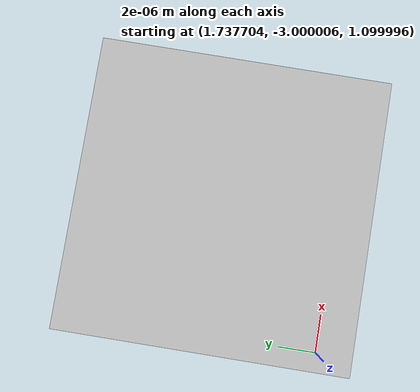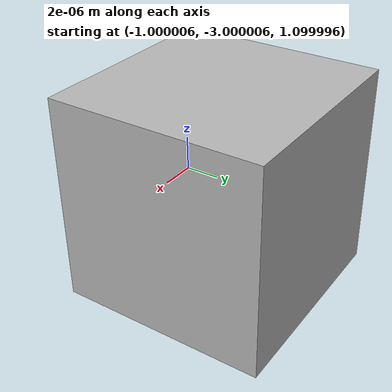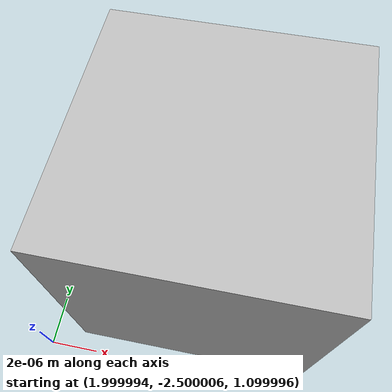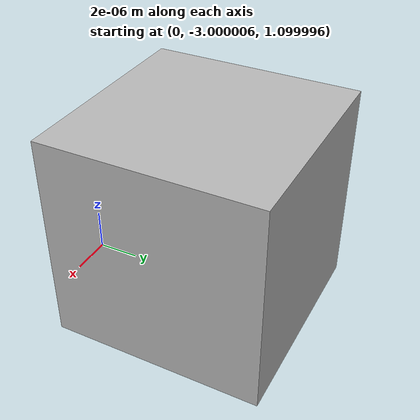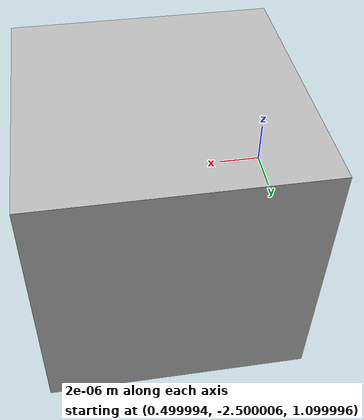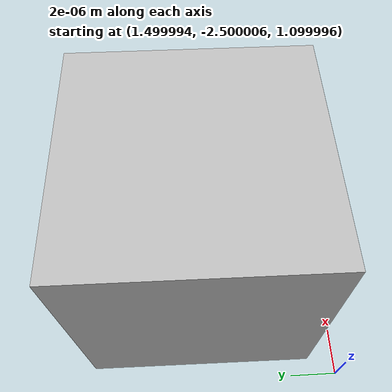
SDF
<sdf version="1.6">
 <world name="default">
  <light name="sun" type="directional">
   <pose>0 0 10 0 -0 0</pose>
   <diffuse>0.8 0.8 0.8 1</diffuse>
   <specular>0.2 0.2 0.2 1</specular>
   <attenuation>
    <range>1000</range>
    <constant>0.9</constant>
    <linear>0.01</linear>
    <quadratic>0.001</quadratic>
   </attenuation>
   <direction>-0.5 0.1 -0.9</direction>
  </light>
  <physics name="default_physics" default="0" type="ode">
   <max_step_size>0.001</max_step_size>
   <real_time_factor>1</real_time_factor>
   <real_time_update_rate>1000</real_time_update_rate>
  </physics>
  <scene><ambient>0.4 0.4 0.4 1</ambient><background>0.7 0.7 0.7 1</background><shadows>1</shadows></scene>
  <spherical_coordinates>
   <surface_model>EARTH_WGS84</surface_model>
   <latitude_deg>0</latitude_deg>
   <longitude_deg>0</longitude_deg>
   <elevation>0</elevation>
   <heading_deg>0</heading_deg>
  </spherical_coordinates>
  <gravity>0 0 -9.8</gravity>
  <magnetic_field>6e-06 2.3e-05 -4.2e-05</magnetic_field>
  <atmosphere type="adiabatic"/>
  <audio><device>default</device></audio>
  <model name="robot_0">
   <link name="my_box">
    <inertial>
     <mass>1</mass>
     <inertia><ixx>0</ixx><ixy>0</ixy><ixz>0</ixz><iyy>0</iyy><iyz>0</iyz><izz>0</izz></inertia>
    </inertial>
    <collision name="my_box_collision"><geometry><box><size>1e-05 1e-05 1e-05</size></box></geometry></collision>
    <visual name="my_box_visual">
     <geometry><box><size>1e-05 1e-05 1e-05</size></box></geometry>
     <material><script><uri>__default__</uri><name>__default__</name></script></material>
    </visual>
    <gravity>0</gravity>
    <sensor name="camera" type="depth">
     <always_on>1</always_on>
     <update_rate>20</update_rate>
     <camera name="__default__">
      <image><format>R8G8B8</format><width>640</width><height>480</height></image>
      <clip><near>0.01</near><far>20</far></clip>
      <horizontal_fov>1.047</horizontal_fov>
     </camera>
     <plugin name="kinect_camera_controller" filename="libgazebo_ros_openni_kinect.so">
      <cameraName>camera0</cameraName>
      <alwaysOn>1</alwaysOn>
      <updateRate>20</updateRate>
      <imageTopicName>rgb/image_raw</imageTopicName>
      <depthImageTopicName>depth/image_raw</depthImageTopicName>
      <pointCloudTopicName>depth/points</pointCloudTopicName>
      <cameraInfoTopicName>rgb/camera_info</cameraInfoTopicName>
      <depthImageCameraInfoTopicName>depth/camera_info</depthImageCameraInfoTopicName>
      <frameName>camera_depth_optical_frame</frameName>
      <baseline>0.0</baseline>
      <distortion_k1>0.0</distortion_k1>
      <distortion_k2>0.0</distortion_k2>
      <distortion_k3>0.0</distortion_k3>
      <distortion_t1>0.0</distortion_t1>
      <distortion_t2>0.0</distortion_t2>
      <CxPrime>0</CxPrime>
      <Cx>0</Cx>
      <Cy>0</Cy>
      <focalLength>0</focalLength>
      <pointCloudCutoff>0.0001</pointCloudCutoff>
      <robotNamespace>/</robotNamespace>
     </plugin>
    </sensor>
   </link>
   <pose>2.26228 -3 1.1 0 1e-06 -1e-06</pose>
  </model>
  <model name="robot_2">
   <link name="my_box">
    <inertial>
     <mass>1</mass>
     <inertia><ixx>0</ixx><ixy>0</ixy><ixz>0</ixz><iyy>0</iyy><iyz>0</iyz><izz>0</izz></inertia>
    </inertial>
    <collision name="my_box_collision"><geometry><box><size>1e-05 1e-05 1e-05</size></box></geometry></collision>
    <visual name="my_box_visual">
     <geometry><box><size>1e-05 1e-05 1e-05</size></box></geometry>
     <material><script><uri>__default__</uri><name>__default__</name></script></material>
    </visual>
    <gravity>0</gravity>
    <sensor name="camera" type="depth">
     <always_on>1</always_on>
     <update_rate>20</update_rate>
     <camera name="__default__">
      <image><format>R8G8B8</format><width>640</width><height>480</height></image>
      <clip><near>0.01</near><far>5</far></clip>
      <horizontal_fov>1.047</horizontal_fov>
     </camera>
     <plugin name="kinect_camera_controller" filename="libgazebo_ros_openni_kinect.so">
      <cameraName>camera2</cameraName>
      <alwaysOn>1</alwaysOn>
      <updateRate>20</updateRate>
      <imageTopicName>rgb/image_raw</imageTopicName>
      <depthImageTopicName>depth/image_raw</depthImageTopicName>
      <pointCloudTopicName>depth/points</pointCloudTopicName>
      <cameraInfoTopicName>rgb/camera_info</cameraInfoTopicName>
      <depthImageCameraInfoTopicName>depth/camera_info</depthImageCameraInfoTopicName>
      <frameName>camera_depth_optical_frame</frameName>
      <baseline>0.0</baseline>
      <distortion_k1>0.0</distortion_k1>
      <distortion_k2>0.0</distortion_k2>
      <distortion_k3>0.0</distortion_k3>
      <distortion_t1>0.0</distortion_t1>
      <distortion_t2>0.0</distortion_t2>
      <CxPrime>0</CxPrime>
      <Cx>0</Cx>
      <Cy>0</Cy>
      <focalLength>0</focalLength>
      <pointCloudCutoff>0.0001</pointCloudCutoff>
      <robotNamespace>/</robotNamespace>
     </plugin>
    </sensor>
   </link>
   <pose>0 -3 1.1 0 -0 0</pose>
  </model>
  <model name="robot_1">
   <link name="my_box">
    <inertial>
     <mass>1</mass>
     <inertia><ixx>0</ixx><ixy>0</ixy><ixz>0</ixz><iyy>0</iyy><iyz>0</iyz><izz>0</izz></inertia>
    </inertial>
    <collision name="my_box_collision"><geometry><box><size>1e-05 1e-05 1e-05</size></box></geometry></collision>
    <visual name="my_box_visual">
     <geometry><box><size>1e-05 1e-05 1e-05</size></box></geometry>
     <material><script><uri>__default__</uri><name>__default__</name></script></material>
    </visual>
    <gravity>0</gravity>
    <sensor name="camera" type="depth">
     <always_on>1</always_on>
     <update_rate>20</update_rate>
     <camera name="__default__">
      <image><format>R8G8B8</format><width>640</width><height>480</height></image>
      <clip><near>0.01</near><far>5</far></clip>
      <horizontal_fov>1.047</horizontal_fov>
     </camera>
     <plugin name="kinect_camera_controller" filename="libgazebo_ros_openni_kinect.so">
      <cameraName>camera1</cameraName>
      <alwaysOn>1</alwaysOn>
      <updateRate>20</updateRate>
      <imageTopicName>rgb/image_raw</imageTopicName>
      <depthImageTopicName>depth/image_raw</depthImageTopicName>
      <pointCloudTopicName>depth/points</pointCloudTopicName>
      <cameraInfoTopicName>rgb/camera_info</cameraInfoTopicName>
      <depthImageCameraInfoTopicName>depth/camera_info</depthImageCameraInfoTopicName>
      <frameName>camera_depth_optical_frame</frameName>
      <baseline>0.0</baseline>
      <distortion_k1>0.0</distortion_k1>
      <distortion_k2>0.0</distortion_k2>
      <distortion_k3>0.0</distortion_k3>
      <distortion_t1>0.0</distortion_t1>
      <distortion_t2>0.0</distortion_t2>
      <CxPrime>0</CxPrime>
      <Cx>0</Cx>
      <Cy>0</Cy>
      <focalLength>0</focalLength>
      <pointCloudCutoff>0.0001</pointCloudCutoff>
      <robotNamespace>/</robotNamespace>
     </plugin>
    </sensor>
   </link>
   <pose>1 -3 1.1 0 -0 0</pose>
  </model>
  <model name="robot_5">
   <link name="my_box">
    <inertial>
     <mass>1</mass>
     <inertia><ixx>0</ixx><ixy>0</ixy><ixz>0</ixz><iyy>0</iyy><iyz>0</iyz><izz>0</izz></inertia>
    </inertial>
    <collision name="my_box_collision"><geometry><box><size>1e-05 1e-05 1e-05</size></box></geometry></collision>
    <visual name="my_box_visual">
     <geometry><box><size>1e-05 1e-05 1e-05</size></box></geometry>
     <material><script><uri>__default__</uri><name>__default__</name></script></material>
    </visual>
    <gravity>0</gravity>
    <sensor name="camera" type="depth">
     <always_on>1</always_on>
     <update_rate>20</update_rate>
     <camera name="__default__">
      <image><format>R8G8B8</format><width>640</width><height>480</height></image>
      <clip><near>0.01</near><far>5</far></clip>
      <horizontal_fov>1.047</horizontal_fov>
     </camera>
     <plugin name="kinect_camera_controller" filename="libgazebo_ros_openni_kinect.so">
      <cameraName>camera5</cameraName>
      <alwaysOn>1</alwaysOn>
      <updateRate>20</updateRate>
      <imageTopicName>rgb/image_raw</imageTopicName>
      <depthImageTopicName>depth/image_raw</depthImageTopicName>
      <pointCloudTopicName>depth/points</pointCloudTopicName>
      <cameraInfoTopicName>rgb/camera_info</cameraInfoTopicName>
      <depthImageCameraInfoTopicName>depth/camera_info</depthImageCameraInfoTopicName>
      <frameName>camera_depth_optical_frame</frameName>
      <baseline>0.0</baseline>
      <distortion_k1>0.0</distortion_k1>
      <distortion_k2>0.0</distortion_k2>
      <distortion_k3>0.0</distortion_k3>
      <distortion_t1>0.0</distortion_t1>
      <distortion_t2>0.0</distortion_t2>
      <CxPrime>0</CxPrime>
      <Cx>0</Cx>
      <Cy>0</Cy>
      <focalLength>0</focalLength>
      <pointCloudCutoff>0.0001</pointCloudCutoff>
      <robotNamespace>/</robotNamespace>
     </plugin>
    </sensor>
   </link>
   <pose>0 -2.5 1.1 0 -0 0</pose>
  </model>
  <model name="robot_3">
   <link name="my_box">
    <inertial>
     <mass>1</mass>
     <inertia><ixx>0</ixx><ixy>0</ixy><ixz>0</ixz><iyy>0</iyy><iyz>0</iyz><izz>0</izz></inertia>
    </inertial>
    <collision name="my_box_collision"><geometry><box><size>1e-05 1e-05 1e-05</size></box></geometry></collision>
    <visual name="my_box_visual">
     <geometry><box><size>1e-05 1e-05 1e-05</size></box></geometry>
     <material><script><uri>__default__</uri><name>__default__</name></script></material>
    </visual>
    <gravity>0</gravity>
    <sensor name="camera" type="depth">
     <always_on>1</always_on>
     <update_rate>20</update_rate>
     <camera name="__default__">
      <image><format>R8G8B8</format><width>640</width><height>480</height></image>
      <clip><near>0.01</near><far>5</far></clip>
      <horizontal_fov>1.047</horizontal_fov>
     </camera>
     <plugin name="kinect_camera_controller" filename="libgazebo_ros_openni_kinect.so">
      <cameraName>camera3</cameraName>
      <alwaysOn>1</alwaysOn>
      <updateRate>20</updateRate>
      <imageTopicName>rgb/image_raw</imageTopicName>
      <depthImageTopicName>depth/image_raw</depthImageTopicName>
      <pointCloudTopicName>depth/points</pointCloudTopicName>
      <cameraInfoTopicName>rgb/camera_info</cameraInfoTopicName>
      <depthImageCameraInfoTopicName>depth/camera_info</depthImageCameraInfoTopicName>
      <frameName>camera_depth_optical_frame</frameName>
      <baseline>0.0</baseline>
      <distortion_k1>0.0</distortion_k1>
      <distortion_k2>0.0</distortion_k2>
      <distortion_k3>0.0</distortion_k3>
      <distortion_t1>0.0</distortion_t1>
      <distortion_t2>0.0</distortion_t2>
      <CxPrime>0</CxPrime>
      <Cx>0</Cx>
      <Cy>0</Cy>
      <focalLength>0</focalLength>
      <pointCloudCutoff>0.0001</pointCloudCutoff>
      <robotNamespace>/</robotNamespace>
     </plugin>
    </sensor>
   </link>
   <pose>-1 -3 1.1 0 -0 0</pose>
  </model>
  <model name="robot_4">
   <link name="my_box">
    <inertial>
     <mass>1</mass>
     <inertia><ixx>0</ixx><ixy>0</ixy><ixz>0</ixz><iyy>0</iyy><iyz>0</iyz><izz>0</izz></inertia>
    </inertial>
    <collision name="my_box_collision"><geometry><box><size>1e-05 1e-05 1e-05</size></box></geometry></collision>
    <visual name="my_box_visual">
     <geometry><box><size>1e-05 1e-05 1e-05</size></box></geometry>
     <material><script><uri>__default__</uri><name>__default__</name></script></material>
    </visual>
    <gravity>0</gravity>
    <sensor name="camera" type="depth">
     <always_on>1</always_on>
     <update_rate>20</update_rate>
     <camera name="__default__">
      <image><format>R8G8B8</format><width>640</width><height>480</height></image>
      <clip><near>0.01</near><far>5</far></clip>
      <horizontal_fov>1.047</horizontal_fov>
     </camera>
     <plugin name="kinect_camera_controller" filename="libgazebo_ros_openni_kinect.so">
      <cameraName>camera4</cameraName>
      <alwaysOn>1</alwaysOn>
      <updateRate>20</updateRate>
      <imageTopicName>rgb/image_raw</imageTopicName>
      <depthImageTopicName>depth/image_raw</depthImageTopicName>
      <pointCloudTopicName>depth/points</pointCloudTopicName>
      <cameraInfoTopicName>rgb/camera_info</cameraInfoTopicName>
      <depthImageCameraInfoTopicName>depth/camera_info</depthImageCameraInfoTopicName>
      <frameName>camera_depth_optical_frame</frameName>
      <baseline>0.0</baseline>
      <distortion_k1>0.0</distortion_k1>
      <distortion_k2>0.0</distortion_k2>
      <distortion_k3>0.0</distortion_k3>
      <distortion_t1>0.0</distortion_t1>
      <distortion_t2>0.0</distortion_t2>
      <CxPrime>0</CxPrime>
      <Cx>0</Cx>
      <Cy>0</Cy>
      <focalLength>0</focalLength>
      <pointCloudCutoff>0.0001</pointCloudCutoff>
      <robotNamespace>/</robotNamespace>
     </plugin>
    </sensor>
   </link>
   <pose>1.73771 -3 1.1 0 -1e-06 1e-06</pose>
  </model>
  <model name="robot_6">
   <link name="my_box">
    <inertial>
     <mass>1</mass>
     <inertia><ixx>0</ixx><ixy>0</ixy><ixz>0</ixz><iyy>0</iyy><iyz>0</iyz><izz>0</izz></inertia>
    </inertial>
    <collision name="my_box_collision"><geometry><box><size>1e-05 1e-05 1e-05</size></box></geometry></collision>
    <visual name="my_box_visual">
     <geometry><box><size>1e-05 1e-05 1e-05</size></box></geometry>
     <material><script><uri>__default__</uri><name>__default__</name></script></material>
    </visual>
    <gravity>0</gravity>
    <sensor name="camera" type="depth">
     <always_on>1</always_on>
     <update_rate>20</update_rate>
     <camera name="__default__">
      <image><format>R8G8B8</format><width>640</width><height>480</height></image>
      <clip><near>0.01</near><far>5</far></clip>
      <horizontal_fov>1.047</horizontal_fov>
     </camera>
     <plugin name="kinect_camera_controller" filename="libgazebo_ros_openni_kinect.so">
      <cameraName>camera6</cameraName>
      <alwaysOn>1</alwaysOn>
      <updateRate>20</updateRate>
      <imageTopicName>rgb/image_raw</imageTopicName>
      <depthImageTopicName>depth/image_raw</depthImageTopicName>
      <pointCloudTopicName>depth/points</pointCloudTopicName>
      <cameraInfoTopicName>rgb/camera_info</cameraInfoTopicName>
      <depthImageCameraInfoTopicName>depth/camera_info</depthImageCameraInfoTopicName>
      <frameName>camera_depth_optical_frame</frameName>
      <baseline>0.0</baseline>
      <distortion_k1>0.0</distortion_k1>
      <distortion_k2>0.0</distortion_k2>
      <distortion_k3>0.0</distortion_k3>
      <distortion_t1>0.0</distortion_t1>
      <distortion_t2>0.0</distortion_t2>
      <CxPrime>0</CxPrime>
      <Cx>0</Cx>
      <Cy>0</Cy>
      <focalLength>0</focalLength>
      <pointCloudCutoff>0.0001</pointCloudCutoff>
      <robotNamespace>/</robotNamespace>
     </plugin>
    </sensor>
   </link>
   <pose>0.5 -2.5 1.1 0 -0 0</pose>
  </model>
  <model name="robot_7">
   <link name="my_box">
    <inertial>
     <mass>1</mass>
     <inertia><ixx>0</ixx><ixy>0</ixy><ixz>0</ixz><iyy>0</iyy><iyz>0</iyz><izz>0</izz></inertia>
    </inertial>
    <collision name="my_box_collision"><geometry><box><size>1e-05 1e-05 1e-05</size></box></geometry></collision>
    <visual name="my_box_visual">
     <geometry><box><size>1e-05 1e-05 1e-05</size></box></geometry>
     <material><script><uri>__default__</uri><name>__default__</name></script></material>
    </visual>
    <gravity>0</gravity>
    <sensor name="camera" type="depth">
     <always_on>1</always_on>
     <update_rate>20</update_rate>
     <camera name="__default__">
      <image><format>R8G8B8</format><width>640</width><height>480</height></image>
      <clip><near>0.01</near><far>5</far></clip>
      <horizontal_fov>1.047</horizontal_fov>
     </camera>
     <plugin name="kinect_camera_controller" filename="libgazebo_ros_openni_kinect.so">
      <cameraName>camera7</cameraName>
      <alwaysOn>1</alwaysOn>
      <updateRate>20</updateRate>
      <imageTopicName>rgb/image_raw</imageTopicName>
      <depthImageTopicName>depth/image_raw</depthImageTopicName>
      <pointCloudTopicName>depth/points</pointCloudTopicName>
      <cameraInfoTopicName>rgb/camera_info</cameraInfoTopicName>
      <depthImageCameraInfoTopicName>depth/camera_info</depthImageCameraInfoTopicName>
      <frameName>camera_depth_optical_frame</frameName>
      <baseline>0.0</baseline>
      <distortion_k1>0.0</distortion_k1>
      <distortion_k2>0.0</distortion_k2>
      <distortion_k3>0.0</distortion_k3>
      <distortion_t1>0.0</distortion_t1>
      <distortion_t2>0.0</distortion_t2>
      <CxPrime>0</CxPrime>
      <Cx>0</Cx>
      <Cy>0</Cy>
      <focalLength>0</focalLength>
      <pointCloudCutoff>0.0001</pointCloudCutoff>
      <robotNamespace>/</robotNamespace>
     </plugin>
    </sensor>
   </link>
   <pose>1 -2.5 1.1 0 -0 0</pose>
  </model>
  <model name="robot_8">
   <link name="my_box">
    <inertial>
     <mass>1</mass>
     <inertia><ixx>0</ixx><ixy>0</ixy><ixz>0</ixz><iyy>0</iyy><iyz>0</iyz><izz>0</izz></inertia>
    </inertial>
    <collision name="my_box_collision"><geometry><box><size>1e-05 1e-05 1e-05</size></box></geometry></collision>
    <visual name="my_box_visual">
     <geometry><box><size>1e-05 1e-05 1e-05</size></box></geometry>
     <material><script><uri>__default__</uri><name>__default__</name></script></material>
    </visual>
    <gravity>0</gravity>
    <sensor name="camera" type="depth">
     <always_on>1</always_on>
     <update_rate>20</update_rate>
     <camera name="__default__">
      <image><format>R8G8B8</format><width>640</width><height>480</height></image>
      <clip><near>0.01</near><far>5</far></clip>
      <horizontal_fov>1.047</horizontal_fov>
     </camera>
     <plugin name="kinect_camera_controller" filename="libgazebo_ros_openni_kinect.so">
      <cameraName>camera8</cameraName>
      <alwaysOn>1</alwaysOn>
      <updateRate>20</updateRate>
      <imageTopicName>rgb/image_raw</imageTopicName>
      <depthImageTopicName>depth/image_raw</depthImageTopicName>
      <pointCloudTopicName>depth/points</pointCloudTopicName>
      <cameraInfoTopicName>rgb/camera_info</cameraInfoTopicName>
      <depthImageCameraInfoTopicName>depth/camera_info</depthImageCameraInfoTopicName>
      <frameName>camera_depth_optical_frame</frameName>
      <baseline>0.0</baseline>
      <distortion_k1>0.0</distortion_k1>
      <distortion_k2>0.0</distortion_k2>
      <distortion_k3>0.0</distortion_k3>
      <distortion_t1>0.0</distortion_t1>
      <distortion_t2>0.0</distortion_t2>
      <CxPrime>0</CxPrime>
      <Cx>0</Cx>
      <Cy>0</Cy>
      <focalLength>0</focalLength>
      <pointCloudCutoff>0.0001</pointCloudCutoff>
      <robotNamespace>/</robotNamespace>
     </plugin>
    </sensor>
   </link>
   <pose>1.5 -2.5 1.1 0 -0 0</pose>
  </model>
  <model name="robot_9">
   <link name="my_box">
    <inertial>
     <mass>1</mass>
     <inertia><ixx>0</ixx><ixy>0</ixy><ixz>0</ixz><iyy>0</iyy><iyz>0</iyz><izz>0</izz></inertia>
    </inertial>
    <collision name="my_box_collision"><geometry><box><size>1e-05 1e-05 1e-05</size></box></geometry></collision>
    <visual name="my_box_visual">
     <geometry><box><size>1e-05 1e-05 1e-05</size></box></geometry>
     <material><script><uri>__default__</uri><name>__default__</name></script></material>
    </visual>
    <gravity>0</gravity>
    <sensor name="camera" type="depth">
     <always_on>1</always_on>
     <update_rate>20</update_rate>
     <camera name="__default__">
      <image><format>R8G8B8</format><width>640</width><height>480</height></image>
      <clip><near>0.01</near><far>5</far></clip>
      <horizontal_fov>1.047</horizontal_fov>
     </camera>
     <plugin name="kinect_camera_controller" filename="libgazebo_ros_openni_kinect.so">
      <cameraName>camera9</cameraName>
      <alwaysOn>1</alwaysOn>
      <updateRate>20</updateRate>
      <imageTopicName>rgb/image_raw</imageTopicName>
      <depthImageTopicName>depth/image_raw</depthImageTopicName>
      <pointCloudTopicName>depth/points</pointCloudTopicName>
      <cameraInfoTopicName>rgb/camera_info</cameraInfoTopicName>
      <depthImageCameraInfoTopicName>depth/camera_info</depthImageCameraInfoTopicName>
      <frameName>camera_depth_optical_frame</frameName>
      <baseline>0.0</baseline>
      <distortion_k1>0.0</distortion_k1>
      <distortion_k2>0.0</distortion_k2>
      <distortion_k3>0.0</distortion_k3>
      <distortion_t1>0.0</distortion_t1>
      <distortion_t2>0.0</distortion_t2>
      <CxPrime>0</CxPrime>
      <Cx>0</Cx>
      <Cy>0</Cy>
      <focalLength>0</focalLength>
      <pointCloudCutoff>0.0001</pointCloudCutoff>
      <robotNamespace>/</robotNamespace>
     </plugin>
    </sensor>
   </link>
   <pose>2 -2.5 1.1 0 -0 0</pose>
  </model>
 </world>
</sdf>
